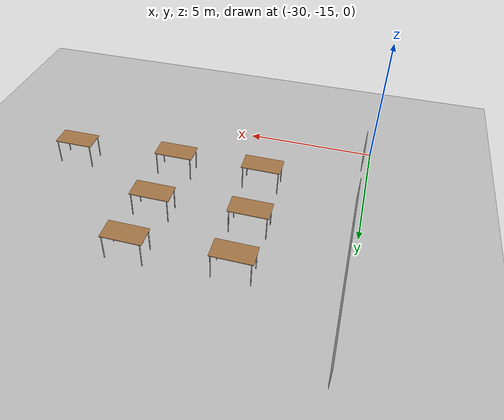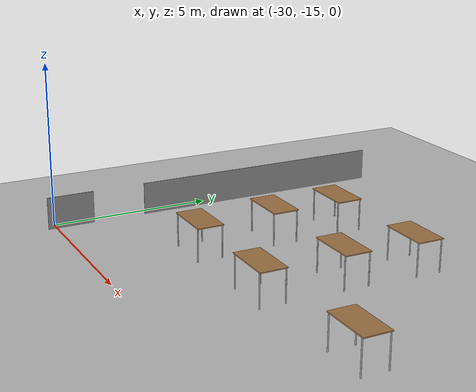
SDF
<sdf version="1.6">
 <world name="default">
  <model name="ground_plane">
   <static>1</static>
   <link name="link">
    <collision name="collision">
     <geometry><plane><normal>0 0 1</normal><size>100 100</size></plane></geometry>
     <surface>
      <contact><collide_bitmask>65535</collide_bitmask></contact>
      <friction><ode><mu>100</mu><mu2>50</mu2></ode></friction>
     </surface>
    </collision>
    <visual name="visual">
     <cast_shadows>0</cast_shadows>
     <geometry><plane><normal>0 0 1</normal><size>100 100</size></plane></geometry>
     <material>
      <script><uri>file://media/materials/scripts/gazebo.material</uri><name>Gazebo/Grey</name></script>
     </material>
    </visual>
   </link>
  </model>
  <model name="unit_box_0_clone_clone_clone_0_clone_clone_clone">
   <static>1</static>
   <pose>-29.7303 -8.08775 0.5 0 -0 0</pose>
   <link name="link">
    <inertial>
     <mass>1</mass>
     <inertia>
      <ixx>0.166667</ixx>
      <ixy>0</ixy>
      <ixz>0</ixz>
      <iyy>0.166667</iyy>
      <iyz>0</iyz>
      <izz>0.166667</izz>
     </inertia>
    </inertial>
    <collision name="collision"><geometry><box><size>0.015785 8.11538 1</size></box></geometry></collision>
    <visual name="visual">
     <geometry><box><size>0.015785 8.11538 1</size></box></geometry>
     <material>
      <script><name>Gazebo/Grey</name><uri>file://media/materials/scripts/gazebo.material</uri></script>
     </material>
    </visual>
   </link>
  </model>
  <model name="unit_box_0_clone_clone_clone_0_clone_0_clone_clone">
   <static>1</static>
   <pose>-29.7293 -14.5292 0.5 0 -0 0</pose>
   <link name="link">
    <inertial>
     <mass>1</mass>
     <inertia>
      <ixx>0.166667</ixx>
      <ixy>0</ixy>
      <ixz>0</ixz>
      <iyy>0.166667</iyy>
      <iyz>0</iyz>
      <izz>0.166667</izz>
     </inertia>
    </inertial>
    <collision name="collision"><geometry><box><size>0.015785 1.45367 1</size></box></geometry></collision>
    <visual name="visual">
     <geometry><box><size>0.015785 1.45367 1</size></box></geometry>
     <material>
      <script><name>Gazebo/Grey</name><uri>file://media/materials/scripts/gazebo.material</uri></script>
     </material>
    </visual>
   </link>
  </model>
  <model name="table_clone_20">
   <static>1</static>
   <link name="link">
    <collision name="surface">
     <pose>0 0 1 0 -0 0</pose>
     <geometry><box><size>1.5 0.8 0.03</size></box></geometry>
     <surface><friction><ode><mu>0.6</mu><mu2>0.6</mu2></ode></friction></surface>
    </collision>
    <visual name="visual1">
     <pose>0 0 1 0 -0 0</pose>
     <geometry><box><size>1.5 0.8 0.03</size></box></geometry>
     <material>
      <script><uri>file://media/materials/scripts/gazebo.material</uri><name>Gazebo/Wood</name></script>
     </material>
    </visual>
    <collision name="front_left_leg">
     <pose>0.68 0.38 0.5 0 -0 0</pose>
     <geometry><cylinder><radius>0.02</radius><length>1</length></cylinder></geometry>
    </collision>
    <visual name="front_left_leg">
     <pose>0.68 0.38 0.5 0 -0 0</pose>
     <geometry><cylinder><radius>0.02</radius><length>1</length></cylinder></geometry>
     <material>
      <script><uri>file://media/materials/scripts/gazebo.material</uri><name>Gazebo/Grey</name></script>
     </material>
    </visual>
    <collision name="front_right_leg">
     <pose>0.68 -0.38 0.5 0 -0 0</pose>
     <geometry><cylinder><radius>0.02</radius><length>1</length></cylinder></geometry>
    </collision>
    <visual name="front_right_leg">
     <pose>0.68 -0.38 0.5 0 -0 0</pose>
     <geometry><cylinder><radius>0.02</radius><length>1</length></cylinder></geometry>
     <material>
      <script><uri>file://media/materials/scripts/gazebo.material</uri><name>Gazebo/Grey</name></script>
     </material>
    </visual>
    <collision name="back_right_leg">
     <pose>-0.68 -0.38 0.5 0 -0 0</pose>
     <geometry><cylinder><radius>0.02</radius><length>1</length></cylinder></geometry>
    </collision>
    <visual name="back_right_leg">
     <pose>-0.68 -0.38 0.5 0 -0 0</pose>
     <geometry><cylinder><radius>0.02</radius><length>1</length></cylinder></geometry>
     <material>
      <script><uri>file://media/materials/scripts/gazebo.material</uri><name>Gazebo/Grey</name></script>
     </material>
    </visual>
    <collision name="back_left_leg">
     <pose>-0.68 0.38 0.5 0 -0 0</pose>
     <geometry><cylinder><radius>0.02</radius><length>1</length></cylinder></geometry>
    </collision>
    <visual name="back_left_leg">
     <pose>-0.68 0.38 0.5 0 -0 0</pose>
     <geometry><cylinder><radius>0.02</radius><length>1</length></cylinder></geometry>
     <material>
      <script><uri>file://media/materials/scripts/gazebo.material</uri><name>Gazebo/Grey</name></script>
     </material>
    </visual>
   </link>
   <pose>-26.1684 -7.31727 0 0 -0 0</pose>
  </model>
  <model name="table_clone_21">
   <static>1</static>
   <link name="link">
    <collision name="surface">
     <pose>0 0 1 0 -0 0</pose>
     <geometry><box><size>1.5 0.8 0.03</size></box></geometry>
     <surface><friction><ode><mu>0.6</mu><mu2>0.6</mu2></ode></friction></surface>
    </collision>
    <visual name="visual1">
     <pose>0 0 1 0 -0 0</pose>
     <geometry><box><size>1.5 0.8 0.03</size></box></geometry>
     <material>
      <script><uri>file://media/materials/scripts/gazebo.material</uri><name>Gazebo/Wood</name></script>
     </material>
    </visual>
    <collision name="front_left_leg">
     <pose>0.68 0.38 0.5 0 -0 0</pose>
     <geometry><cylinder><radius>0.02</radius><length>1</length></cylinder></geometry>
    </collision>
    <visual name="front_left_leg">
     <pose>0.68 0.38 0.5 0 -0 0</pose>
     <geometry><cylinder><radius>0.02</radius><length>1</length></cylinder></geometry>
     <material>
      <script><uri>file://media/materials/scripts/gazebo.material</uri><name>Gazebo/Grey</name></script>
     </material>
    </visual>
    <collision name="front_right_leg">
     <pose>0.68 -0.38 0.5 0 -0 0</pose>
     <geometry><cylinder><radius>0.02</radius><length>1</length></cylinder></geometry>
    </collision>
    <visual name="front_right_leg">
     <pose>0.68 -0.38 0.5 0 -0 0</pose>
     <geometry><cylinder><radius>0.02</radius><length>1</length></cylinder></geometry>
     <material>
      <script><uri>file://media/materials/scripts/gazebo.material</uri><name>Gazebo/Grey</name></script>
     </material>
    </visual>
    <collision name="back_right_leg">
     <pose>-0.68 -0.38 0.5 0 -0 0</pose>
     <geometry><cylinder><radius>0.02</radius><length>1</length></cylinder></geometry>
    </collision>
    <visual name="back_right_leg">
     <pose>-0.68 -0.38 0.5 0 -0 0</pose>
     <geometry><cylinder><radius>0.02</radius><length>1</length></cylinder></geometry>
     <material>
      <script><uri>file://media/materials/scripts/gazebo.material</uri><name>Gazebo/Grey</name></script>
     </material>
    </visual>
    <collision name="back_left_leg">
     <pose>-0.68 0.38 0.5 0 -0 0</pose>
     <geometry><cylinder><radius>0.02</radius><length>1</length></cylinder></geometry>
    </collision>
    <visual name="back_left_leg">
     <pose>-0.68 0.38 0.5 0 -0 0</pose>
     <geometry><cylinder><radius>0.02</radius><length>1</length></cylinder></geometry>
     <material>
      <script><uri>file://media/materials/scripts/gazebo.material</uri><name>Gazebo/Grey</name></script>
     </material>
    </visual>
   </link>
   <pose>-26.1956 -9.4626 0 0 -0 0</pose>
  </model>
  <model name="table_clone_22">
   <static>1</static>
   <link name="link">
    <collision name="surface">
     <pose>0 0 1 0 -0 0</pose>
     <geometry><box><size>1.5 0.8 0.03</size></box></geometry>
     <surface><friction><ode><mu>0.6</mu><mu2>0.6</mu2></ode></friction></surface>
    </collision>
    <visual name="visual1">
     <pose>0 0 1 0 -0 0</pose>
     <geometry><box><size>1.5 0.8 0.03</size></box></geometry>
     <material>
      <script><uri>file://media/materials/scripts/gazebo.material</uri><name>Gazebo/Wood</name></script>
     </material>
    </visual>
    <collision name="front_left_leg">
     <pose>0.68 0.38 0.5 0 -0 0</pose>
     <geometry><cylinder><radius>0.02</radius><length>1</length></cylinder></geometry>
    </collision>
    <visual name="front_left_leg">
     <pose>0.68 0.38 0.5 0 -0 0</pose>
     <geometry><cylinder><radius>0.02</radius><length>1</length></cylinder></geometry>
     <material>
      <script><uri>file://media/materials/scripts/gazebo.material</uri><name>Gazebo/Grey</name></script>
     </material>
    </visual>
    <collision name="front_right_leg">
     <pose>0.68 -0.38 0.5 0 -0 0</pose>
     <geometry><cylinder><radius>0.02</radius><length>1</length></cylinder></geometry>
    </collision>
    <visual name="front_right_leg">
     <pose>0.68 -0.38 0.5 0 -0 0</pose>
     <geometry><cylinder><radius>0.02</radius><length>1</length></cylinder></geometry>
     <material>
      <script><uri>file://media/materials/scripts/gazebo.material</uri><name>Gazebo/Grey</name></script>
     </material>
    </visual>
    <collision name="back_right_leg">
     <pose>-0.68 -0.38 0.5 0 -0 0</pose>
     <geometry><cylinder><radius>0.02</radius><length>1</length></cylinder></geometry>
    </collision>
    <visual name="back_right_leg">
     <pose>-0.68 -0.38 0.5 0 -0 0</pose>
     <geometry><cylinder><radius>0.02</radius><length>1</length></cylinder></geometry>
     <material>
      <script><uri>file://media/materials/scripts/gazebo.material</uri><name>Gazebo/Grey</name></script>
     </material>
    </visual>
    <collision name="back_left_leg">
     <pose>-0.68 0.38 0.5 0 -0 0</pose>
     <geometry><cylinder><radius>0.02</radius><length>1</length></cylinder></geometry>
    </collision>
    <visual name="back_left_leg">
     <pose>-0.68 0.38 0.5 0 -0 0</pose>
     <geometry><cylinder><radius>0.02</radius><length>1</length></cylinder></geometry>
     <material>
      <script><uri>file://media/materials/scripts/gazebo.material</uri><name>Gazebo/Grey</name></script>
     </material>
    </visual>
   </link>
   <pose>-22.489 -7.12957 0 0 -0 0</pose>
  </model>
  <model name="table_clone_23">
   <static>1</static>
   <link name="link">
    <collision name="surface">
     <pose>0 0 1 0 -0 0</pose>
     <geometry><box><size>1.5 0.8 0.03</size></box></geometry>
     <surface><friction><ode><mu>0.6</mu><mu2>0.6</mu2></ode></friction></surface>
    </collision>
    <visual name="visual1">
     <pose>0 0 1 0 -0 0</pose>
     <geometry><box><size>1.5 0.8 0.03</size></box></geometry>
     <material>
      <script><uri>file://media/materials/scripts/gazebo.material</uri><name>Gazebo/Wood</name></script>
     </material>
    </visual>
    <collision name="front_left_leg">
     <pose>0.68 0.38 0.5 0 -0 0</pose>
     <geometry><cylinder><radius>0.02</radius><length>1</length></cylinder></geometry>
    </collision>
    <visual name="front_left_leg">
     <pose>0.68 0.38 0.5 0 -0 0</pose>
     <geometry><cylinder><radius>0.02</radius><length>1</length></cylinder></geometry>
     <material>
      <script><uri>file://media/materials/scripts/gazebo.material</uri><name>Gazebo/Grey</name></script>
     </material>
    </visual>
    <collision name="front_right_leg">
     <pose>0.68 -0.38 0.5 0 -0 0</pose>
     <geometry><cylinder><radius>0.02</radius><length>1</length></cylinder></geometry>
    </collision>
    <visual name="front_right_leg">
     <pose>0.68 -0.38 0.5 0 -0 0</pose>
     <geometry><cylinder><radius>0.02</radius><length>1</length></cylinder></geometry>
     <material>
      <script><uri>file://media/materials/scripts/gazebo.material</uri><name>Gazebo/Grey</name></script>
     </material>
    </visual>
    <collision name="back_right_leg">
     <pose>-0.68 -0.38 0.5 0 -0 0</pose>
     <geometry><cylinder><radius>0.02</radius><length>1</length></cylinder></geometry>
    </collision>
    <visual name="back_right_leg">
     <pose>-0.68 -0.38 0.5 0 -0 0</pose>
     <geometry><cylinder><radius>0.02</radius><length>1</length></cylinder></geometry>
     <material>
      <script><uri>file://media/materials/scripts/gazebo.material</uri><name>Gazebo/Grey</name></script>
     </material>
    </visual>
    <collision name="back_left_leg">
     <pose>-0.68 0.38 0.5 0 -0 0</pose>
     <geometry><cylinder><radius>0.02</radius><length>1</length></cylinder></geometry>
    </collision>
    <visual name="back_left_leg">
     <pose>-0.68 0.38 0.5 0 -0 0</pose>
     <geometry><cylinder><radius>0.02</radius><length>1</length></cylinder></geometry>
     <material>
      <script><uri>file://media/materials/scripts/gazebo.material</uri><name>Gazebo/Grey</name></script>
     </material>
    </visual>
   </link>
   <pose>-22.6116 -9.34617 0 0 -0 0</pose>
  </model>
  <model name="table_clone_24">
   <static>1</static>
   <link name="link">
    <collision name="surface">
     <pose>0 0 1 0 -0 0</pose>
     <geometry><box><size>1.5 0.8 0.03</size></box></geometry>
     <surface><friction><ode><mu>0.6</mu><mu2>0.6</mu2></ode></friction></surface>
    </collision>
    <visual name="visual1">
     <pose>0 0 1 0 -0 0</pose>
     <geometry><box><size>1.5 0.8 0.03</size></box></geometry>
     <material>
      <script><uri>file://media/materials/scripts/gazebo.material</uri><name>Gazebo/Wood</name></script>
     </material>
    </visual>
    <collision name="front_left_leg">
     <pose>0.68 0.38 0.5 0 -0 0</pose>
     <geometry><cylinder><radius>0.02</radius><length>1</length></cylinder></geometry>
    </collision>
    <visual name="front_left_leg">
     <pose>0.68 0.38 0.5 0 -0 0</pose>
     <geometry><cylinder><radius>0.02</radius><length>1</length></cylinder></geometry>
     <material>
      <script><uri>file://media/materials/scripts/gazebo.material</uri><name>Gazebo/Grey</name></script>
     </material>
    </visual>
    <collision name="front_right_leg">
     <pose>0.68 -0.38 0.5 0 -0 0</pose>
     <geometry><cylinder><radius>0.02</radius><length>1</length></cylinder></geometry>
    </collision>
    <visual name="front_right_leg">
     <pose>0.68 -0.38 0.5 0 -0 0</pose>
     <geometry><cylinder><radius>0.02</radius><length>1</length></cylinder></geometry>
     <material>
      <script><uri>file://media/materials/scripts/gazebo.material</uri><name>Gazebo/Grey</name></script>
     </material>
    </visual>
    <collision name="back_right_leg">
     <pose>-0.68 -0.38 0.5 0 -0 0</pose>
     <geometry><cylinder><radius>0.02</radius><length>1</length></cylinder></geometry>
    </collision>
    <visual name="back_right_leg">
     <pose>-0.68 -0.38 0.5 0 -0 0</pose>
     <geometry><cylinder><radius>0.02</radius><length>1</length></cylinder></geometry>
     <material>
      <script><uri>file://media/materials/scripts/gazebo.material</uri><name>Gazebo/Grey</name></script>
     </material>
    </visual>
    <collision name="back_left_leg">
     <pose>-0.68 0.38 0.5 0 -0 0</pose>
     <geometry><cylinder><radius>0.02</radius><length>1</length></cylinder></geometry>
    </collision>
    <visual name="back_left_leg">
     <pose>-0.68 0.38 0.5 0 -0 0</pose>
     <geometry><cylinder><radius>0.02</radius><length>1</length></cylinder></geometry>
     <material>
      <script><uri>file://media/materials/scripts/gazebo.material</uri><name>Gazebo/Grey</name></script>
     </material>
    </visual>
   </link>
   <pose>-22.6528 -11.8228 0 0 -0 0</pose>
  </model>
  <model name="table_clone_25">
   <static>1</static>
   <link name="link">
    <collision name="surface">
     <pose>0 0 1 0 -0 0</pose>
     <geometry><box><size>1.5 0.8 0.03</size></box></geometry>
     <surface><friction><ode><mu>0.6</mu><mu2>0.6</mu2></ode></friction></surface>
    </collision>
    <visual name="visual1">
     <pose>0 0 1 0 -0 0</pose>
     <geometry><box><size>1.5 0.8 0.03</size></box></geometry>
     <material>
      <script><uri>file://media/materials/scripts/gazebo.material</uri><name>Gazebo/Wood</name></script>
     </material>
    </visual>
    <collision name="front_left_leg">
     <pose>0.68 0.38 0.5 0 -0 0</pose>
     <geometry><cylinder><radius>0.02</radius><length>1</length></cylinder></geometry>
    </collision>
    <visual name="front_left_leg">
     <pose>0.68 0.38 0.5 0 -0 0</pose>
     <geometry><cylinder><radius>0.02</radius><length>1</length></cylinder></geometry>
     <material>
      <script><uri>file://media/materials/scripts/gazebo.material</uri><name>Gazebo/Grey</name></script>
     </material>
    </visual>
    <collision name="front_right_leg">
     <pose>0.68 -0.38 0.5 0 -0 0</pose>
     <geometry><cylinder><radius>0.02</radius><length>1</length></cylinder></geometry>
    </collision>
    <visual name="front_right_leg">
     <pose>0.68 -0.38 0.5 0 -0 0</pose>
     <geometry><cylinder><radius>0.02</radius><length>1</length></cylinder></geometry>
     <material>
      <script><uri>file://media/materials/scripts/gazebo.material</uri><name>Gazebo/Grey</name></script>
     </material>
    </visual>
    <collision name="back_right_leg">
     <pose>-0.68 -0.38 0.5 0 -0 0</pose>
     <geometry><cylinder><radius>0.02</radius><length>1</length></cylinder></geometry>
    </collision>
    <visual name="back_right_leg">
     <pose>-0.68 -0.38 0.5 0 -0 0</pose>
     <geometry><cylinder><radius>0.02</radius><length>1</length></cylinder></geometry>
     <material>
      <script><uri>file://media/materials/scripts/gazebo.material</uri><name>Gazebo/Grey</name></script>
     </material>
    </visual>
    <collision name="back_left_leg">
     <pose>-0.68 0.38 0.5 0 -0 0</pose>
     <geometry><cylinder><radius>0.02</radius><length>1</length></cylinder></geometry>
    </collision>
    <visual name="back_left_leg">
     <pose>-0.68 0.38 0.5 0 -0 0</pose>
     <geometry><cylinder><radius>0.02</radius><length>1</length></cylinder></geometry>
     <material>
      <script><uri>file://media/materials/scripts/gazebo.material</uri><name>Gazebo/Grey</name></script>
     </material>
    </visual>
   </link>
   <pose>-26.08 -11.9233 0 0 -0 0</pose>
  </model>
  <model name="table_clone_28">
   <static>1</static>
   <link name="link">
    <collision name="surface">
     <pose>0 0 1 0 -0 0</pose>
     <geometry><box><size>1.5 0.8 0.03</size></box></geometry>
     <surface><friction><ode><mu>0.6</mu><mu2>0.6</mu2></ode></friction></surface>
    </collision>
    <visual name="visual1">
     <pose>0 0 1 0 -0 0</pose>
     <geometry><box><size>1.5 0.8 0.03</size></box></geometry>
     <material>
      <script><uri>file://media/materials/scripts/gazebo.material</uri><name>Gazebo/Wood</name></script>
     </material>
    </visual>
    <collision name="front_left_leg">
     <pose>0.68 0.38 0.5 0 -0 0</pose>
     <geometry><cylinder><radius>0.02</radius><length>1</length></cylinder></geometry>
    </collision>
    <visual name="front_left_leg">
     <pose>0.68 0.38 0.5 0 -0 0</pose>
     <geometry><cylinder><radius>0.02</radius><length>1</length></cylinder></geometry>
     <material>
      <script><uri>file://media/materials/scripts/gazebo.material</uri><name>Gazebo/Grey</name></script>
     </material>
    </visual>
    <collision name="front_right_leg">
     <pose>0.68 -0.38 0.5 0 -0 0</pose>
     <geometry><cylinder><radius>0.02</radius><length>1</length></cylinder></geometry>
    </collision>
    <visual name="front_right_leg">
     <pose>0.68 -0.38 0.5 0 -0 0</pose>
     <geometry><cylinder><radius>0.02</radius><length>1</length></cylinder></geometry>
     <material>
      <script><uri>file://media/materials/scripts/gazebo.material</uri><name>Gazebo/Grey</name></script>
     </material>
    </visual>
    <collision name="back_right_leg">
     <pose>-0.68 -0.38 0.5 0 -0 0</pose>
     <geometry><cylinder><radius>0.02</radius><length>1</length></cylinder></geometry>
    </collision>
    <visual name="back_right_leg">
     <pose>-0.68 -0.38 0.5 0 -0 0</pose>
     <geometry><cylinder><radius>0.02</radius><length>1</length></cylinder></geometry>
     <material>
      <script><uri>file://media/materials/scripts/gazebo.material</uri><name>Gazebo/Grey</name></script>
     </material>
    </visual>
    <collision name="back_left_leg">
     <pose>-0.68 0.38 0.5 0 -0 0</pose>
     <geometry><cylinder><radius>0.02</radius><length>1</length></cylinder></geometry>
    </collision>
    <visual name="back_left_leg">
     <pose>-0.68 0.38 0.5 0 -0 0</pose>
     <geometry><cylinder><radius>0.02</radius><length>1</length></cylinder></geometry>
     <material>
      <script><uri>file://media/materials/scripts/gazebo.material</uri><name>Gazebo/Grey</name></script>
     </material>
    </visual>
   </link>
   <pose>-18.5923 -11.4908 0 0 -0 0</pose>
  </model>
 </world>
</sdf>
